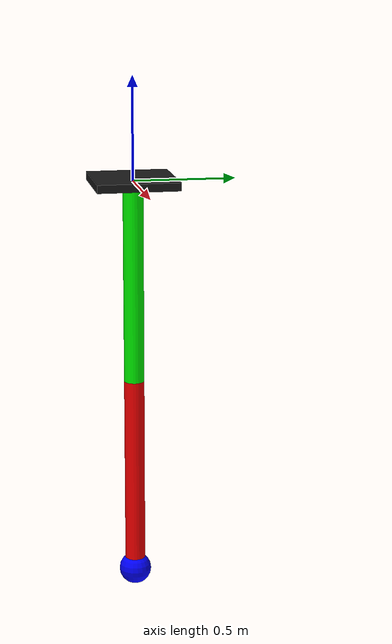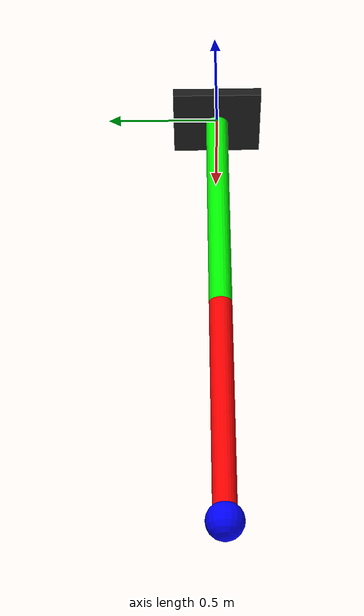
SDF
<sdf version='1.6'>
  <model name='2d_gripper'>
    <link name="ground">
      <visual name='ground_visual'>
        <pose>0 0 0 0 0 0</pose>
        <geometry>
          <box>
            <size>0.4 0.4 0.04</size>
          </box>
        </geometry>
        <material>
          <diffuse>0.1 0.1 0.1 1</diffuse>
        </material>
      </visual>
    </link>
    <link name='Link1'>
      <pose>0 0 0 0 0 0</pose>
      <inertial>
        <pose>0 0 -0.5 0 0 0</pose>
        <mass>1</mass>
        <inertia>
          <ixx>0.083</ixx><iyy>0.083</iyy><izz>5e-7</izz>
          <ixy>0</ixy><ixz>0</ixz><iyz>0</iyz>
        </inertia>
      </inertial>
      <visual name='Link1_visual'>
        <pose>0 0 -0.5 0 0 0</pose>
        <geometry>
          <cylinder>
            <length>1.0</length>
            <radius>0.05</radius>
          </cylinder>
        </geometry>
        <material>
          <diffuse>0 1 0 1</diffuse>
        </material>
      </visual>
    </link>
    <joint name='ground_weld' type='fixed'>
      <child>ground</child>
      <parent>world</parent>
    </joint>
    <joint name='ShoulderJoint' type='revolute'>
      <child>Link1</child>
      <parent>ground</parent>
      <axis>
        <xyz>0 1 0</xyz>
        <limit>
          <!-- Drake parses a zero effort joint as an un-actuated joint. -->
          <effort>1</effort>
          <lower>-1.57</lower>
          <upper>1.57</upper>
        </limit>
        <dynamics>
          <damping>0.1</damping>
        </dynamics>
        <use_parent_model_frame>1</use_parent_model_frame>
      </axis>
    </joint>
    <link name='Link2'>
      <!-- The origin of the Link2 frame is defined to be coincident with
           the origin of the x-z plane in the elbow joint frame. -->
      <pose>0 0 -1 0 0 0</pose>
      <inertial>
        <pose>0 0 -0.5 0 0 0</pose>
        <mass>1</mass>
        <!-- This inertia is based on a solid cylinder with
             radius=1.0 meters and height=2.0 meters. -->
        <!-- For this model we could make izz = 0 however, sdformat will throw
             an exception. -->
        <inertia>
          <ixx>0.083</ixx><iyy>0.083</iyy><izz>5e-7</izz>
          <ixy>0</ixy><ixz>0</ixz><iyz>0</iyz>
        </inertia>
      </inertial>
      <visual name='Link2_visual'>
        <pose>0 0 -0.5 0 0 0</pose>
        <geometry>
          <cylinder>
            <length>1.0</length>
            <radius>0.05</radius>
          </cylinder>
        </geometry>
        <material>
          <diffuse>1 0 0 1</diffuse>
        </material>
      </visual>
      <visual name='Link2_pad'>
        <pose>0 0 -1 0 0 0</pose>
        <geometry>
          <sphere>
            <radius>0.08</radius>
          </sphere>
        </geometry>
        <material>
          <diffuse>0 0 1 1</diffuse>
        </material>
      </visual>
    </link>
    <joint name='ElbowJoint' type='revolute'>
      <parent>Link1</parent>
      <child>Link2</child>
      <!-- Pose X_CJ of the joint frame J in the frame C of the child link -->
      <pose>0 0 0 0 0 0</pose>
      <axis>
        <xyz>0 1 0</xyz>
        <limit>
          <!-- No limit provided. sdformat defaults to -1, which we parse as
               an actuated joint. -->
          <lower>-1.57</lower>
          <upper>1.57</upper>
        </limit>
        <dynamics>
          <damping>0.1</damping>
        </dynamics>
        <use_parent_model_frame>1</use_parent_model_frame>
      </axis>
    </joint>
  </model>
</sdf>
